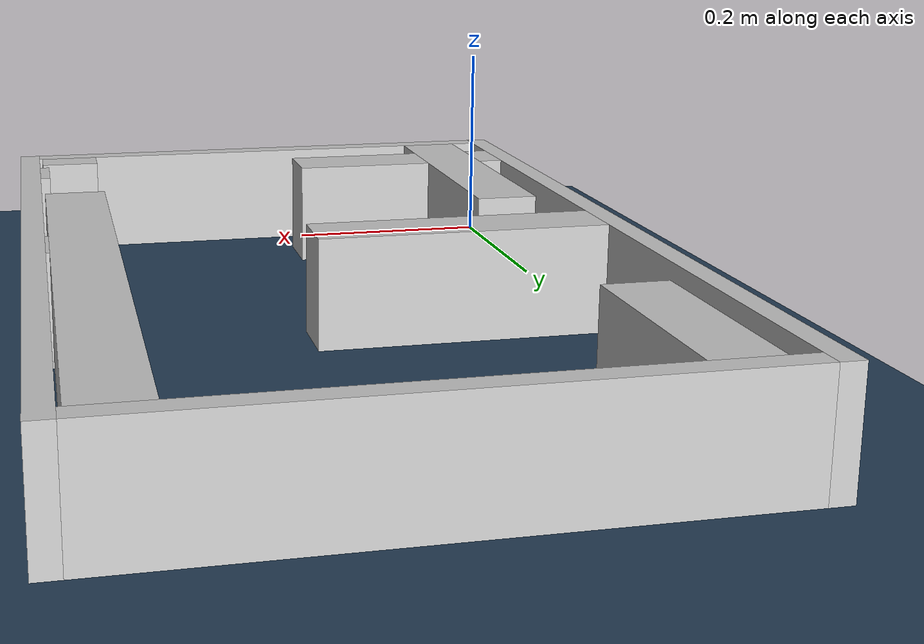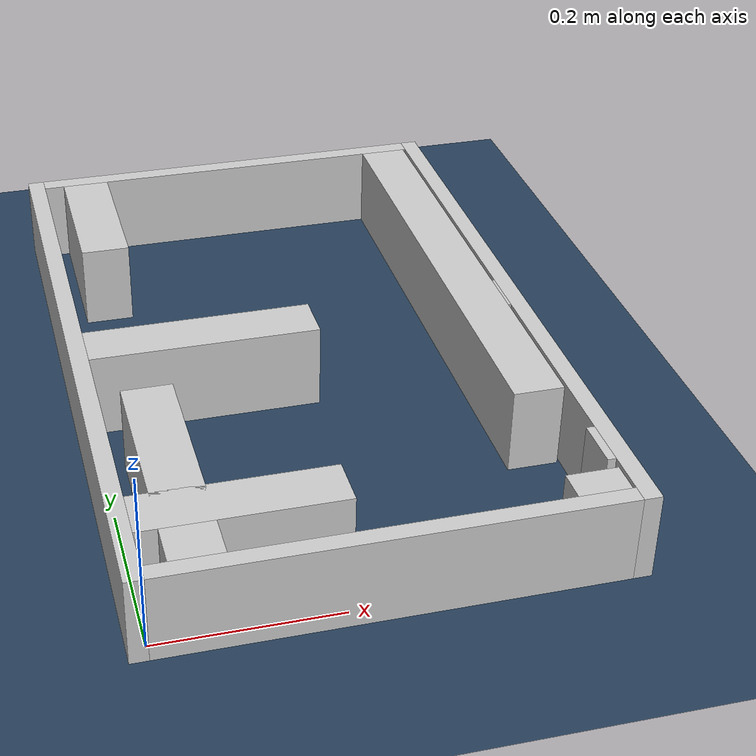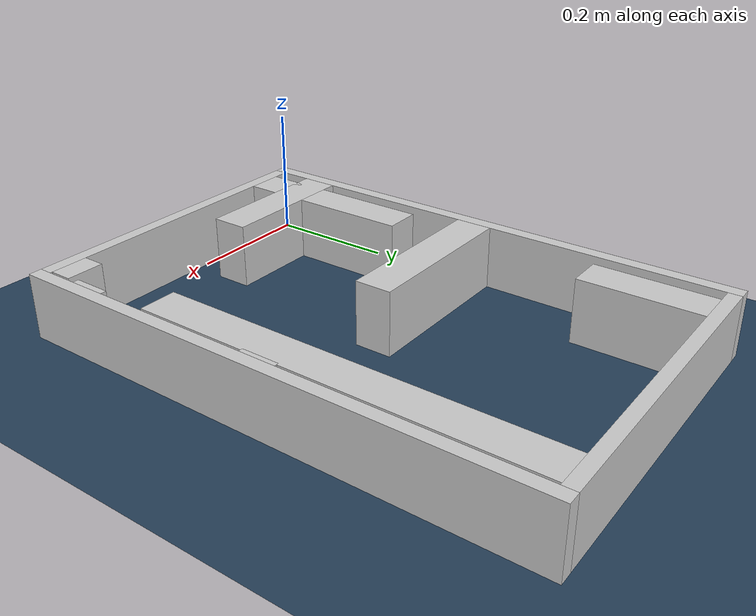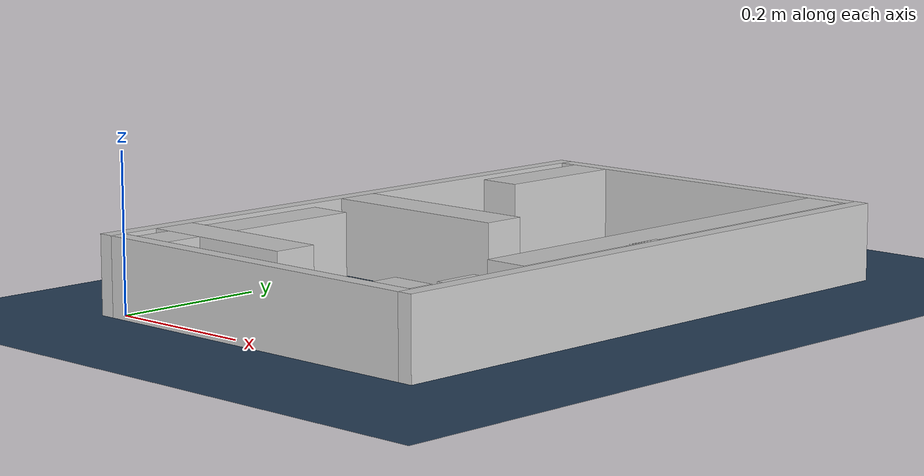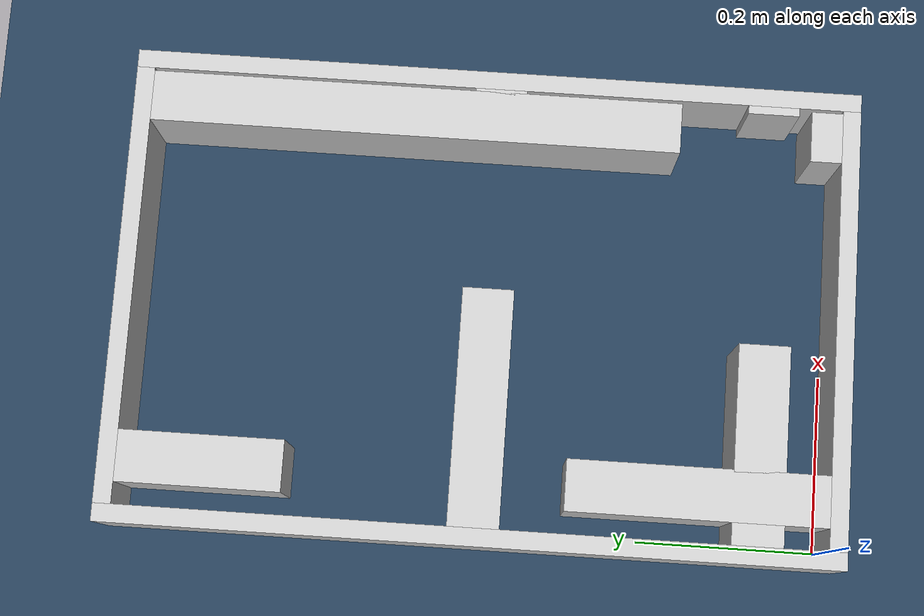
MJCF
<?xml version="1.0" ?>
<mujoco model="generated_real_template">
  <compiler angle="degree"/>
  <option timestep="0.002" integrator="implicitfast" iterations="100" cone="elliptic"/>
  <default>
    <geom density="1"/>
  </default>
  <asset>
    <texture builtin="gradient" height="3072" rgb1="0.3 0.5 0.7" rgb2="0 0 0" type="skybox" width="512"/>
    <texture builtin="checker" height="300" mark="edge" markrgb="0.8 0.8 0.8" name="groundplane" rgb1="0.2 0.3 0.4" rgb2="0.1 0.2 0.3" type="2d" width="300"/>
    <material name="groundplane" reflectance="0.2" texrepeat="5 5" texture="groundplane" texuniform="true"/>
  </asset>
  <worldbody>
    <light dir="0 0 -1" directional="true" pos="0 0 1.5"/>
    <geom name="floor" type="plane" condim="4" friction="0.5 0.005 0.001" material="groundplane" size="0 0 0.05"/>
    <body name="walls">
      <geom name="wall_boundary_left" type="box" condim="4" friction="1.0 0.005 0.0001" rgba="0.8 0.8 0.8 1" pos="-0.010000 0.387500 0.050000" euler="0 0 0.000000" size="0.010000 0.407500 0.050000"/>
      <geom name="wall_boundary_right" type="box" condim="4" friction="1.0 0.005 0.0001" rgba="0.8 0.8 0.8 1" pos="0.500000 0.387500 0.050000" euler="0 0 0.000000" size="0.010000 0.407500 0.050000"/>
      <geom name="wall_boundary_bottom" type="box" condim="4" friction="1.0 0.005 0.0001" rgba="0.8 0.8 0.8 1" pos="0.245000 -0.010000 0.050000" euler="0 0 0.000000" size="0.245000 0.010000 0.050000"/>
      <geom name="wall_boundary_top" type="box" condim="4" friction="1.0 0.005 0.0001" rgba="0.8 0.8 0.8 1" pos="0.245000 0.785000 0.050000" euler="0 0 0.000000" size="0.245000 0.010000 0.050000"/>
      <geom name="wall_inner_1_1" type="box" condim="4" friction="1.0 0.005 0.0001" rgba="0.8 0.8 0.8 1" pos="0.458232 0.017446 0.050000" euler="0 0 90.000000" size="0.017446 0.028500 0.050000"/>
      <geom name="wall_inner_1_2" type="box" condim="4" friction="1.0 0.005 0.0001" rgba="0.8 0.8 0.8 1" pos="0.458232 0.477746 0.050000" euler="0 0 90.000000" size="0.297254 0.028500 0.050000"/>
      <geom name="wall_inner_2_1" type="box" condim="4" friction="1.0 0.005 0.0001" rgba="0.8 0.8 0.8 1" pos="0.109699 0.077390 0.050000" euler="0 0 0.000000" size="0.109699 0.028500 0.050000"/>
      <geom name="wall_inner_2_2" type="box" condim="4" friction="1.0 0.005 0.0001" rgba="0.8 0.8 0.8 1" pos="0.485337 0.077390 0.050000" euler="0 0 0.000000" size="0.004663 0.028500 0.050000"/>
      <geom name="wall_inner_3_1" type="box" condim="4" friction="1.0 0.005 0.0001" rgba="0.8 0.8 0.8 1" pos="0.131129 0.383810 0.050000" euler="0 0 0.000000" size="0.131129 0.028500 0.050000"/>
      <geom name="wall_inner_3_2" type="box" condim="4" friction="1.0 0.005 0.0001" rgba="0.8 0.8 0.8 1" pos="0.486554 0.383810 0.050000" euler="0 0 0.000000" size="0.003446 0.028500 0.050000"/>
      <geom name="wall_inner_4_1" type="box" condim="4" friction="1.0 0.005 0.0001" rgba="0.8 0.8 0.8 1" pos="0.052756 0.143586 0.050000" euler="0 0 90.000000" size="0.143586 0.028500 0.050000"/>
      <geom name="wall_inner_4_2" type="box" condim="4" friction="1.0 0.005 0.0001" rgba="0.8 0.8 0.8 1" pos="0.052756 0.684292 0.050000" euler="0 0 90.000000" size="0.090708 0.028500 0.050000"/>
    </body>
  </worldbody>
</mujoco>
